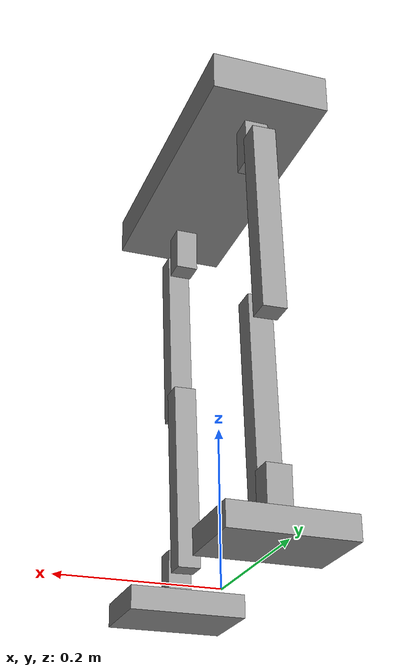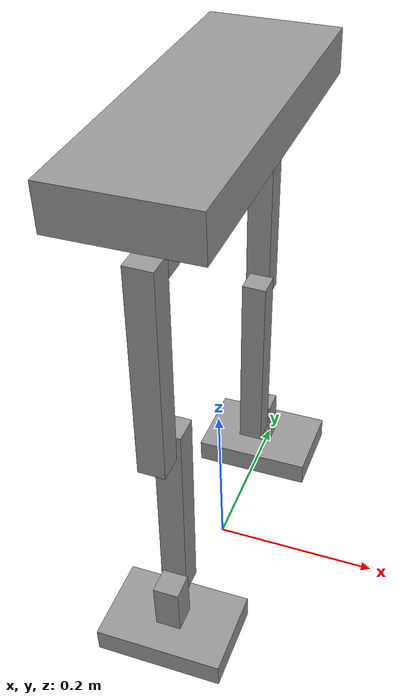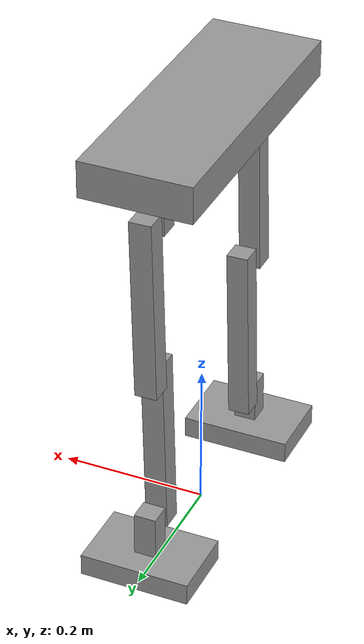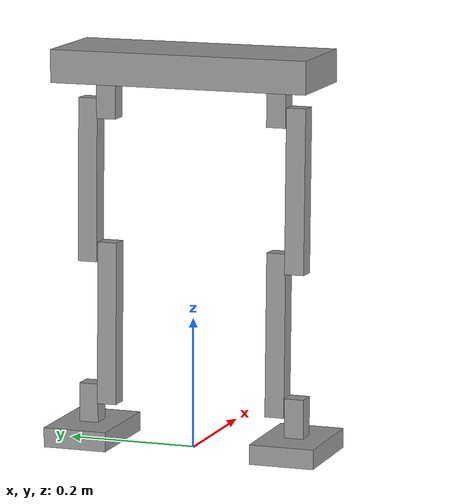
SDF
<?xml version='1.0'?>
<sdf version='1.6'>
  <model name='HumanoidRobot'>
    <link name='link_1'>
      <inertial>
        <mass>1</mass>
        <inertia>
          <ixx>0.166667</ixx>
          <ixy>0</ixy>
          <ixz>0</ixz>
          <iyy>0.166667</iyy>
          <iyz>0</iyz>
          <izz>0.166667</izz>
        </inertia>
        <pose frame=''>0 0 0 0 -0 0</pose>
      </inertial>
      <pose frame=''>0 0 0.585 0 -0 0</pose>
      <gravity>1</gravity>
      <self_collide>1</self_collide>
      <kinematic>0</kinematic>
      <enable_wind>0</enable_wind>
      <visual name='ModelPreview_0::link_1::visual_2'>
        <pose frame=''>0 -0.135 -0.055 0 -0 0</pose>
        <geometry>
          <box>
            <size>0.03 0.03 0.06</size>
          </box>
        </geometry>
        <material>
          <lighting>1</lighting>
          <script>
            <uri>file://media/materials/scripts/gazebo.material</uri>
            <name>Gazebo/Grey</name>
          </script>
          <shader type='vertex'>
            <normal_map>__default__</normal_map>
          </shader>
          <ambient>0.3 0.3 0.3 1</ambient>
          <diffuse>0.7 0.7 0.7 1</diffuse>
          <specular>0.01 0.01 0.01 1</specular>
          <emissive>0 0 0 1</emissive>
        </material>
        <transparency>0</transparency>
        <cast_shadows>1</cast_shadows>
      </visual>
      <visual name='ModelPreview_0::link_1::visual_1'>
        <pose frame=''>0 0.135 -0.055 0 -0 0</pose>
        <geometry>
          <box>
            <size>0.03 0.03 0.06</size>
          </box>
        </geometry>
        <material>
          <lighting>1</lighting>
          <script>
            <uri>file://media/materials/scripts/gazebo.material</uri>
            <name>Gazebo/Grey</name>
          </script>
          <shader type='vertex'>
            <normal_map>__default__</normal_map>
          </shader>
          <ambient>0.3 0.3 0.3 1</ambient>
          <diffuse>0.7 0.7 0.7 1</diffuse>
          <specular>0.01 0.01 0.01 1</specular>
          <emissive>0 0 0 1</emissive>
        </material>
        <transparency>0</transparency>
        <cast_shadows>1</cast_shadows>
      </visual>
      <visual name='visual'>
        <pose frame=''>0 0 0 0 -0 0</pose>
        <geometry>
          <box>
            <size>0.15 0.4 0.05</size>
          </box>
        </geometry>
        <material>
          <lighting>1</lighting>
          <script>
            <uri>file://media/materials/scripts/gazebo.material</uri>
            <name>Gazebo/Grey</name>
          </script>
          <shader type='vertex'>
            <normal_map>__default__</normal_map>
          </shader>
          <ambient>0.3 0.3 0.3 1</ambient>
          <diffuse>0.7 0.7 0.7 1</diffuse>
          <specular>0.01 0.01 0.01 1</specular>
          <emissive>0 0 0 1</emissive>
        </material>
        <transparency>0</transparency>
        <cast_shadows>1</cast_shadows>
      </visual>
      <collision name='collision_2'>
        <laser_retro>0</laser_retro>
        <max_contacts>10</max_contacts>
        <pose frame=''>0 -0.135 -0.055 0 -0 0</pose>
        <geometry>
          <box>
            <size>0.03 0.03 0.06</size>
          </box>
        </geometry>
        <surface>
          <friction>
            <ode>
              <mu>1</mu>
              <mu2>1</mu2>
              <fdir1>0 0 0</fdir1>
              <slip1>0</slip1>
              <slip2>0</slip2>
            </ode>
            <torsional>
              <coefficient>1</coefficient>
              <patch_radius>0</patch_radius>
              <surface_radius>0</surface_radius>
              <use_patch_radius>1</use_patch_radius>
              <ode>
                <slip>0</slip>
              </ode>
            </torsional>
          </friction>
          <bounce>
            <restitution_coefficient>0</restitution_coefficient>
            <threshold>1e+06</threshold>
          </bounce>
          <contact>
            <collide_without_contact>0</collide_without_contact>
            <collide_without_contact_bitmask>1</collide_without_contact_bitmask>
            <collide_bitmask>1</collide_bitmask>
            <ode>
              <soft_cfm>0</soft_cfm>
              <soft_erp>0.2</soft_erp>
              <kp>1e+13</kp>
              <kd>1</kd>
              <max_vel>0.01</max_vel>
              <min_depth>0</min_depth>
            </ode>
            <bullet>
              <split_impulse>1</split_impulse>
              <split_impulse_penetration_threshold>-0.01</split_impulse_penetration_threshold>
              <soft_cfm>0</soft_cfm>
              <soft_erp>0.2</soft_erp>
              <kp>1e+13</kp>
              <kd>1</kd>
            </bullet>
          </contact>
        </surface>
      </collision>
      <collision name='collision_1'>
        <laser_retro>0</laser_retro>
        <max_contacts>10</max_contacts>
        <pose frame=''>0 0.135 -0.055 0 -0 0</pose>
        <geometry>
          <box>
            <size>0.03 0.03 0.06</size>
          </box>
        </geometry>
        <surface>
          <friction>
            <ode>
              <mu>1</mu>
              <mu2>1</mu2>
              <fdir1>0 0 0</fdir1>
              <slip1>0</slip1>
              <slip2>0</slip2>
            </ode>
            <torsional>
              <coefficient>1</coefficient>
              <patch_radius>0</patch_radius>
              <surface_radius>0</surface_radius>
              <use_patch_radius>1</use_patch_radius>
              <ode>
                <slip>0</slip>
              </ode>
            </torsional>
          </friction>
          <bounce>
            <restitution_coefficient>0</restitution_coefficient>
            <threshold>1e+06</threshold>
          </bounce>
          <contact>
            <collide_without_contact>0</collide_without_contact>
            <collide_without_contact_bitmask>1</collide_without_contact_bitmask>
            <collide_bitmask>1</collide_bitmask>
            <ode>
              <soft_cfm>0</soft_cfm>
              <soft_erp>0.2</soft_erp>
              <kp>1e+13</kp>
              <kd>1</kd>
              <max_vel>0.01</max_vel>
              <min_depth>0</min_depth>
            </ode>
            <bullet>
              <split_impulse>1</split_impulse>
              <split_impulse_penetration_threshold>-0.01</split_impulse_penetration_threshold>
              <soft_cfm>0</soft_cfm>
              <soft_erp>0.2</soft_erp>
              <kp>1e+13</kp>
              <kd>1</kd>
            </bullet>
          </contact>
        </surface>
      </collision>
      <collision name='collision'>
        <laser_retro>0</laser_retro>
        <max_contacts>10</max_contacts>
        <pose frame=''>0 0 0 0 -0 0</pose>
        <geometry>
          <box>
            <size>0.15 0.4 0.05</size>
          </box>
        </geometry>
        <surface>
          <friction>
            <ode>
              <mu>1</mu>
              <mu2>1</mu2>
              <fdir1>0 0 0</fdir1>
              <slip1>0</slip1>
              <slip2>0</slip2>
            </ode>
            <torsional>
              <coefficient>1</coefficient>
              <patch_radius>0</patch_radius>
              <surface_radius>0</surface_radius>
              <use_patch_radius>1</use_patch_radius>
              <ode>
                <slip>0</slip>
              </ode>
            </torsional>
          </friction>
          <bounce>
            <restitution_coefficient>0</restitution_coefficient>
            <threshold>1e+06</threshold>
          </bounce>
          <contact>
            <collide_without_contact>0</collide_without_contact>
            <collide_without_contact_bitmask>1</collide_without_contact_bitmask>
            <collide_bitmask>1</collide_bitmask>
            <ode>
              <soft_cfm>0</soft_cfm>
              <soft_erp>0.2</soft_erp>
              <kp>1e+13</kp>
              <kd>1</kd>
              <max_vel>0.01</max_vel>
              <min_depth>0</min_depth>
            </ode>
            <bullet>
              <split_impulse>1</split_impulse>
              <split_impulse_penetration_threshold>-0.01</split_impulse_penetration_threshold>
              <soft_cfm>0</soft_cfm>
              <soft_erp>0.2</soft_erp>
              <kp>1e+13</kp>
              <kd>1</kd>
            </bullet>
          </contact>
        </surface>
      </collision>
    </link>
    <link name='link_0'>
      <inertial>
        <mass>1</mass>
        <inertia>
          <ixx>0.166667</ixx>
          <ixy>0</ixy>
          <ixz>0</ixz>
          <iyy>0.166667</iyy>
          <iyz>0</iyz>
          <izz>0.166667</izz>
        </inertia>
        <pose frame=''>0 0 0 0 -0 0</pose>
      </inertial>
      <pose frame=''>0 -0.165 0.015 0 -0 0</pose>
      <gravity>1</gravity>
      <self_collide>1</self_collide>
      <kinematic>0</kinematic>
      <enable_wind>0</enable_wind>
      <visual name='ModelPreview_1::link_0::visual_1'>
        <pose frame=''>0 0 0.045 0 -0 0</pose>
        <geometry>
          <box>
            <size>0.03 0.03 0.06</size>
          </box>
        </geometry>
        <material>
          <lighting>1</lighting>
          <script>
            <uri>file://media/materials/scripts/gazebo.material</uri>
            <name>Gazebo/Grey</name>
          </script>
          <shader type='vertex'>
            <normal_map>__default__</normal_map>
          </shader>
          <ambient>0.3 0.3 0.3 1</ambient>
          <diffuse>0.7 0.7 0.7 1</diffuse>
          <specular>0.01 0.01 0.01 1</specular>
          <emissive>0 0 0 1</emissive>
        </material>
        <transparency>0</transparency>
        <cast_shadows>1</cast_shadows>
      </visual>
      <visual name='visual'>
        <pose frame=''>0 0 0 0 -0 0</pose>
        <geometry>
          <box>
            <size>0.15 0.1 0.03</size>
          </box>
        </geometry>
        <material>
          <lighting>1</lighting>
          <script>
            <uri>file://media/materials/scripts/gazebo.material</uri>
            <name>Gazebo/Grey</name>
          </script>
          <shader type='vertex'>
            <normal_map>__default__</normal_map>
          </shader>
          <ambient>0.3 0.3 0.3 1</ambient>
          <diffuse>0.7 0.7 0.7 1</diffuse>
          <specular>0.01 0.01 0.01 1</specular>
          <emissive>0 0 0 1</emissive>
        </material>
        <transparency>0</transparency>
        <cast_shadows>1</cast_shadows>
      </visual>
      <collision name='collision_1'>
        <laser_retro>0</laser_retro>
        <max_contacts>10</max_contacts>
        <pose frame=''>0 0 0.045 0 -0 0</pose>
        <geometry>
          <box>
            <size>0.03 0.03 0.06</size>
          </box>
        </geometry>
        <surface>
          <friction>
            <ode>
              <mu>1</mu>
              <mu2>1</mu2>
              <fdir1>0 0 0</fdir1>
              <slip1>0</slip1>
              <slip2>0</slip2>
            </ode>
            <torsional>
              <coefficient>1</coefficient>
              <patch_radius>0</patch_radius>
              <surface_radius>0</surface_radius>
              <use_patch_radius>1</use_patch_radius>
              <ode>
                <slip>0</slip>
              </ode>
            </torsional>
          </friction>
          <bounce>
            <restitution_coefficient>0</restitution_coefficient>
            <threshold>1e+06</threshold>
          </bounce>
          <contact>
            <collide_without_contact>0</collide_without_contact>
            <collide_without_contact_bitmask>1</collide_without_contact_bitmask>
            <collide_bitmask>1</collide_bitmask>
            <ode>
              <soft_cfm>0</soft_cfm>
              <soft_erp>0.2</soft_erp>
              <kp>1e+13</kp>
              <kd>1</kd>
              <max_vel>0.01</max_vel>
              <min_depth>0</min_depth>
            </ode>
            <bullet>
              <split_impulse>1</split_impulse>
              <split_impulse_penetration_threshold>-0.01</split_impulse_penetration_threshold>
              <soft_cfm>0</soft_cfm>
              <soft_erp>0.2</soft_erp>
              <kp>1e+13</kp>
              <kd>1</kd>
            </bullet>
          </contact>
        </surface>
      </collision>
      <collision name='collision'>
        <laser_retro>0</laser_retro>
        <max_contacts>10</max_contacts>
        <pose frame=''>0 0 0 0 -0 0</pose>
        <geometry>
          <box>
            <size>0.15 0.1 0.03</size>
          </box>
        </geometry>
        <surface>
          <friction>
            <ode>
              <mu>1</mu>
              <mu2>1</mu2>
              <fdir1>0 0 0</fdir1>
              <slip1>0</slip1>
              <slip2>0</slip2>
            </ode>
            <torsional>
              <coefficient>1</coefficient>
              <patch_radius>0</patch_radius>
              <surface_radius>0</surface_radius>
              <use_patch_radius>1</use_patch_radius>
              <ode>
                <slip>0</slip>
              </ode>
            </torsional>
          </friction>
          <bounce>
            <restitution_coefficient>0</restitution_coefficient>
            <threshold>1e+06</threshold>
          </bounce>
          <contact>
            <collide_without_contact>0</collide_without_contact>
            <collide_without_contact_bitmask>1</collide_without_contact_bitmask>
            <collide_bitmask>1</collide_bitmask>
            <ode>
              <soft_cfm>0</soft_cfm>
              <soft_erp>0.2</soft_erp>
              <kp>1e+13</kp>
              <kd>1</kd>
              <max_vel>0.01</max_vel>
              <min_depth>0</min_depth>
            </ode>
            <bullet>
              <split_impulse>1</split_impulse>
              <split_impulse_penetration_threshold>-0.01</split_impulse_penetration_threshold>
              <soft_cfm>0</soft_cfm>
              <soft_erp>0.2</soft_erp>
              <kp>1e+13</kp>
              <kd>1</kd>
            </bullet>
          </contact>
        </surface>
      </collision>
    </link>
    <link name='link_0_clone'>
      <inertial>
        <mass>1</mass>
        <inertia>
          <ixx>0.166667</ixx>
          <ixy>0</ixy>
          <ixz>0</ixz>
          <iyy>0.166667</iyy>
          <iyz>0</iyz>
          <izz>0.166667</izz>
        </inertia>
        <pose frame=''>0 0 0 0 -0 0</pose>
      </inertial>
      <pose frame=''>0 0.165 0.015 0 -0 0</pose>
      <gravity>1</gravity>
      <self_collide>1</self_collide>
      <kinematic>0</kinematic>
      <enable_wind>0</enable_wind>
      <visual name='visual'>
        <pose frame=''>0 0 0 0 -0 0</pose>
        <geometry>
          <box>
            <size>0.15 0.1 0.03</size>
          </box>
        </geometry>
        <material>
          <lighting>1</lighting>
          <script>
            <uri>file://media/materials/scripts/gazebo.material</uri>
            <name>Gazebo/Grey</name>
          </script>
          <shader type='vertex'>
            <normal_map>__default__</normal_map>
          </shader>
          <ambient>0.3 0.3 0.3 1</ambient>
          <diffuse>0.7 0.7 0.7 1</diffuse>
          <specular>0.01 0.01 0.01 1</specular>
          <emissive>0 0 0 1</emissive>
        </material>
        <transparency>0</transparency>
        <cast_shadows>1</cast_shadows>
      </visual>
      <visual name='visual_1'>
        <pose frame=''>0 0 0.045 0 -0 0</pose>
        <geometry>
          <box>
            <size>0.03 0.03 0.06</size>
          </box>
        </geometry>
        <material>
          <lighting>1</lighting>
          <script>
            <uri>file://media/materials/scripts/gazebo.material</uri>
            <name>Gazebo/Grey</name>
          </script>
          <shader type='vertex'>
            <normal_map>__default__</normal_map>
          </shader>
          <ambient>0.3 0.3 0.3 1</ambient>
          <diffuse>0.7 0.7 0.7 1</diffuse>
          <specular>0.01 0.01 0.01 1</specular>
          <emissive>0 0 0 1</emissive>
        </material>
        <transparency>0</transparency>
        <cast_shadows>1</cast_shadows>
      </visual>
      <collision name='collision_1'>
        <laser_retro>0</laser_retro>
        <max_contacts>10</max_contacts>
        <pose frame=''>0 0 0.045 0 -0 0</pose>
        <geometry>
          <box>
            <size>0.03 0.03 0.06</size>
          </box>
        </geometry>
        <surface>
          <friction>
            <ode>
              <mu>1</mu>
              <mu2>1</mu2>
              <fdir1>0 0 0</fdir1>
              <slip1>0</slip1>
              <slip2>0</slip2>
            </ode>
            <torsional>
              <coefficient>1</coefficient>
              <patch_radius>0</patch_radius>
              <surface_radius>0</surface_radius>
              <use_patch_radius>1</use_patch_radius>
              <ode>
                <slip>0</slip>
              </ode>
            </torsional>
          </friction>
          <bounce>
            <restitution_coefficient>0</restitution_coefficient>
            <threshold>1e+06</threshold>
          </bounce>
          <contact>
            <collide_without_contact>0</collide_without_contact>
            <collide_without_contact_bitmask>1</collide_without_contact_bitmask>
            <collide_bitmask>1</collide_bitmask>
            <ode>
              <soft_cfm>0</soft_cfm>
              <soft_erp>0.2</soft_erp>
              <kp>1e+13</kp>
              <kd>1</kd>
              <max_vel>0.01</max_vel>
              <min_depth>0</min_depth>
            </ode>
            <bullet>
              <split_impulse>1</split_impulse>
              <split_impulse_penetration_threshold>-0.01</split_impulse_penetration_threshold>
              <soft_cfm>0</soft_cfm>
              <soft_erp>0.2</soft_erp>
              <kp>1e+13</kp>
              <kd>1</kd>
            </bullet>
          </contact>
        </surface>
      </collision>
      <collision name='collision'>
        <laser_retro>0</laser_retro>
        <max_contacts>10</max_contacts>
        <pose frame=''>0 0 0 0 -0 0</pose>
        <geometry>
          <box>
            <size>0.15 0.1 0.03</size>
          </box>
        </geometry>
        <surface>
          <friction>
            <ode>
              <mu>1</mu>
              <mu2>1</mu2>
              <fdir1>0 0 0</fdir1>
              <slip1>0</slip1>
              <slip2>0</slip2>
            </ode>
            <torsional>
              <coefficient>1</coefficient>
              <patch_radius>0</patch_radius>
              <surface_radius>0</surface_radius>
              <use_patch_radius>1</use_patch_radius>
              <ode>
                <slip>0</slip>
              </ode>
            </torsional>
          </friction>
          <bounce>
            <restitution_coefficient>0</restitution_coefficient>
            <threshold>1e+06</threshold>
          </bounce>
          <contact>
            <collide_without_contact>0</collide_without_contact>
            <collide_without_contact_bitmask>1</collide_without_contact_bitmask>
            <collide_bitmask>1</collide_bitmask>
            <ode>
              <soft_cfm>0</soft_cfm>
              <soft_erp>0.2</soft_erp>
              <kp>1e+13</kp>
              <kd>1</kd>
              <max_vel>0.01</max_vel>
              <min_depth>0</min_depth>
            </ode>
            <bullet>
              <split_impulse>1</split_impulse>
              <split_impulse_penetration_threshold>-0.01</split_impulse_penetration_threshold>
              <soft_cfm>0</soft_cfm>
              <soft_erp>0.2</soft_erp>
              <kp>1e+13</kp>
              <kd>1</kd>
            </bullet>
          </contact>
        </surface>
      </collision>
    </link>
    <link name='link_2'>
      <inertial>
        <mass>1</mass>
        <inertia>
          <ixx>0.166667</ixx>
          <ixy>0</ixy>
          <ixz>0</ixz>
          <iyy>0.166667</iyy>
          <iyz>0</iyz>
          <izz>0.166667</izz>
        </inertia>
        <pose frame=''>0 0 0 0 -0 0</pose>
      </inertial>
      <pose frame=''>0 -0.165 0.405 0 0.023326 0</pose>
      <gravity>1</gravity>
      <self_collide>1</self_collide>
      <kinematic>0</kinematic>
      <enable_wind>0</enable_wind>
      <visual name='visual'>
        <pose frame=''>0 0 0 0 -0 0</pose>
        <geometry>
          <box>
            <size>0.03 0.03 0.25</size>
          </box>
        </geometry>
        <material>
          <lighting>1</lighting>
          <script>
            <uri>file://media/materials/scripts/gazebo.material</uri>
            <name>Gazebo/Grey</name>
          </script>
          <shader type='vertex'>
            <normal_map>__default__</normal_map>
          </shader>
          <ambient>0.3 0.3 0.3 1</ambient>
          <diffuse>0.7 0.7 0.7 1</diffuse>
          <specular>0.01 0.01 0.01 1</specular>
          <emissive>0 0 0 1</emissive>
        </material>
        <transparency>0</transparency>
        <cast_shadows>1</cast_shadows>
      </visual>
      <collision name='collision'>
        <laser_retro>0</laser_retro>
        <max_contacts>10</max_contacts>
        <pose frame=''>0 0 0 0 -0 0</pose>
        <geometry>
          <box>
            <size>0.03 0.03 0.25</size>
          </box>
        </geometry>
        <surface>
          <friction>
            <ode>
              <mu>1</mu>
              <mu2>1</mu2>
              <fdir1>0 0 0</fdir1>
              <slip1>0</slip1>
              <slip2>0</slip2>
            </ode>
            <torsional>
              <coefficient>1</coefficient>
              <patch_radius>0</patch_radius>
              <surface_radius>0</surface_radius>
              <use_patch_radius>1</use_patch_radius>
              <ode>
                <slip>0</slip>
              </ode>
            </torsional>
          </friction>
          <bounce>
            <restitution_coefficient>0</restitution_coefficient>
            <threshold>1e+06</threshold>
          </bounce>
          <contact>
            <collide_without_contact>0</collide_without_contact>
            <collide_without_contact_bitmask>1</collide_without_contact_bitmask>
            <collide_bitmask>1</collide_bitmask>
            <ode>
              <soft_cfm>0</soft_cfm>
              <soft_erp>0.2</soft_erp>
              <kp>1e+13</kp>
              <kd>1</kd>
              <max_vel>0.01</max_vel>
              <min_depth>0</min_depth>
            </ode>
            <bullet>
              <split_impulse>1</split_impulse>
              <split_impulse_penetration_threshold>-0.01</split_impulse_penetration_threshold>
              <soft_cfm>0</soft_cfm>
              <soft_erp>0.2</soft_erp>
              <kp>1e+13</kp>
              <kd>1</kd>
            </bullet>
          </contact>
        </surface>
      </collision>
    </link>
    <link name='link_2_clone'>
      <inertial>
        <mass>1</mass>
        <inertia>
          <ixx>0.166667</ixx>
          <ixy>0</ixy>
          <ixz>0</ixz>
          <iyy>0.166667</iyy>
          <iyz>0</iyz>
          <izz>0.166667</izz>
        </inertia>
        <pose frame=''>0 0 0 0 -0 0</pose>
      </inertial>
      <pose frame=''>0 -0.135 0.185 0 0.023326 0</pose>
      <gravity>1</gravity>
      <self_collide>1</self_collide>
      <kinematic>0</kinematic>
      <enable_wind>0</enable_wind>
      <visual name='visual'>
        <pose frame=''>0 0 0 0 -0 0</pose>
        <geometry>
          <box>
            <size>0.03 0.03 0.25</size>
          </box>
        </geometry>
        <material>
          <lighting>1</lighting>
          <script>
            <uri>file://media/materials/scripts/gazebo.material</uri>
            <name>Gazebo/Grey</name>
          </script>
          <shader type='vertex'>
            <normal_map>__default__</normal_map>
          </shader>
          <ambient>0.3 0.3 0.3 1</ambient>
          <diffuse>0.7 0.7 0.7 1</diffuse>
          <specular>0.01 0.01 0.01 1</specular>
          <emissive>0 0 0 1</emissive>
        </material>
        <transparency>0</transparency>
        <cast_shadows>1</cast_shadows>
      </visual>
      <collision name='collision'>
        <laser_retro>0</laser_retro>
        <max_contacts>10</max_contacts>
        <pose frame=''>0 0 0 0 -0 0</pose>
        <geometry>
          <box>
            <size>0.03 0.03 0.25</size>
          </box>
        </geometry>
        <surface>
          <friction>
            <ode>
              <mu>1</mu>
              <mu2>1</mu2>
              <fdir1>0 0 0</fdir1>
              <slip1>0</slip1>
              <slip2>0</slip2>
            </ode>
            <torsional>
              <coefficient>1</coefficient>
              <patch_radius>0</patch_radius>
              <surface_radius>0</surface_radius>
              <use_patch_radius>1</use_patch_radius>
              <ode>
                <slip>0</slip>
              </ode>
            </torsional>
          </friction>
          <bounce>
            <restitution_coefficient>0</restitution_coefficient>
            <threshold>1e+06</threshold>
          </bounce>
          <contact>
            <collide_without_contact>0</collide_without_contact>
            <collide_without_contact_bitmask>1</collide_without_contact_bitmask>
            <collide_bitmask>1</collide_bitmask>
            <ode>
              <soft_cfm>0</soft_cfm>
              <soft_erp>0.2</soft_erp>
              <kp>1e+13</kp>
              <kd>1</kd>
              <max_vel>0.01</max_vel>
              <min_depth>0</min_depth>
            </ode>
            <bullet>
              <split_impulse>1</split_impulse>
              <split_impulse_penetration_threshold>-0.01</split_impulse_penetration_threshold>
              <soft_cfm>0</soft_cfm>
              <soft_erp>0.2</soft_erp>
              <kp>1e+13</kp>
              <kd>1</kd>
            </bullet>
          </contact>
        </surface>
      </collision>
    </link>
    <link name='link_2_clone_0'>
      <inertial>
        <mass>1</mass>
        <inertia>
          <ixx>0.166667</ixx>
          <ixy>0</ixy>
          <ixz>0</ixz>
          <iyy>0.166667</iyy>
          <iyz>0</iyz>
          <izz>0.166667</izz>
        </inertia>
        <pose frame=''>0 0 0 0 -0 0</pose>
      </inertial>
      <pose frame=''>0 0.165 0.405 0 0.023326 0</pose>
      <gravity>1</gravity>
      <self_collide>1</self_collide>
      <kinematic>0</kinematic>
      <enable_wind>0</enable_wind>
      <visual name='visual'>
        <pose frame=''>0 0 0 0 -0 0</pose>
        <geometry>
          <box>
            <size>0.03 0.03 0.25</size>
          </box>
        </geometry>
        <material>
          <lighting>1</lighting>
          <script>
            <uri>file://media/materials/scripts/gazebo.material</uri>
            <name>Gazebo/Grey</name>
          </script>
          <shader type='vertex'>
            <normal_map>__default__</normal_map>
          </shader>
          <ambient>0.3 0.3 0.3 1</ambient>
          <diffuse>0.7 0.7 0.7 1</diffuse>
          <specular>0.01 0.01 0.01 1</specular>
          <emissive>0 0 0 1</emissive>
        </material>
        <transparency>0</transparency>
        <cast_shadows>1</cast_shadows>
      </visual>
      <collision name='collision'>
        <laser_retro>0</laser_retro>
        <max_contacts>10</max_contacts>
        <pose frame=''>0 0 0 0 -0 0</pose>
        <geometry>
          <box>
            <size>0.03 0.03 0.25</size>
          </box>
        </geometry>
        <surface>
          <friction>
            <ode>
              <mu>1</mu>
              <mu2>1</mu2>
              <fdir1>0 0 0</fdir1>
              <slip1>0</slip1>
              <slip2>0</slip2>
            </ode>
            <torsional>
              <coefficient>1</coefficient>
              <patch_radius>0</patch_radius>
              <surface_radius>0</surface_radius>
              <use_patch_radius>1</use_patch_radius>
              <ode>
                <slip>0</slip>
              </ode>
            </torsional>
          </friction>
          <bounce>
            <restitution_coefficient>0</restitution_coefficient>
            <threshold>1e+06</threshold>
          </bounce>
          <contact>
            <collide_without_contact>0</collide_without_contact>
            <collide_without_contact_bitmask>1</collide_without_contact_bitmask>
            <collide_bitmask>1</collide_bitmask>
            <ode>
              <soft_cfm>0</soft_cfm>
              <soft_erp>0.2</soft_erp>
              <kp>1e+13</kp>
              <kd>1</kd>
              <max_vel>0.01</max_vel>
              <min_depth>0</min_depth>
            </ode>
            <bullet>
              <split_impulse>1</split_impulse>
              <split_impulse_penetration_threshold>-0.01</split_impulse_penetration_threshold>
              <soft_cfm>0</soft_cfm>
              <soft_erp>0.2</soft_erp>
              <kp>1e+13</kp>
              <kd>1</kd>
            </bullet>
          </contact>
        </surface>
      </collision>
    </link>
    <link name='link_2_clone_1'>
      <inertial>
        <mass>1</mass>
        <inertia>
          <ixx>0.166667</ixx>
          <ixy>0</ixy>
          <ixz>0</ixz>
          <iyy>0.166667</iyy>
          <iyz>0</iyz>
          <izz>0.166667</izz>
        </inertia>
        <pose frame=''>0 0 0 0 -0 0</pose>
      </inertial>
      <pose frame=''>0 0.135 0.185 0 0.023326 0</pose>
      <gravity>1</gravity>
      <self_collide>1</self_collide>
      <kinematic>0</kinematic>
      <enable_wind>0</enable_wind>
      <visual name='visual'>
        <pose frame=''>0 0 0 0 -0 0</pose>
        <geometry>
          <box>
            <size>0.03 0.03 0.25</size>
          </box>
        </geometry>
        <material>
          <lighting>1</lighting>
          <script>
            <uri>file://media/materials/scripts/gazebo.material</uri>
            <name>Gazebo/Grey</name>
          </script>
          <shader type='vertex'>
            <normal_map>__default__</normal_map>
          </shader>
          <ambient>0.3 0.3 0.3 1</ambient>
          <diffuse>0.7 0.7 0.7 1</diffuse>
          <specular>0.01 0.01 0.01 1</specular>
          <emissive>0 0 0 1</emissive>
        </material>
        <transparency>0</transparency>
        <cast_shadows>1</cast_shadows>
      </visual>
      <collision name='collision'>
        <laser_retro>0</laser_retro>
        <max_contacts>10</max_contacts>
        <pose frame=''>0 0 0 0 -0 0</pose>
        <geometry>
          <box>
            <size>0.03 0.03 0.25</size>
          </box>
        </geometry>
        <surface>
          <friction>
            <ode>
              <mu>1</mu>
              <mu2>1</mu2>
              <fdir1>0 0 0</fdir1>
              <slip1>0</slip1>
              <slip2>0</slip2>
            </ode>
            <torsional>
              <coefficient>1</coefficient>
              <patch_radius>0</patch_radius>
              <surface_radius>0</surface_radius>
              <use_patch_radius>1</use_patch_radius>
              <ode>
                <slip>0</slip>
              </ode>
            </torsional>
          </friction>
          <bounce>
            <restitution_coefficient>0</restitution_coefficient>
            <threshold>1e+06</threshold>
          </bounce>
          <contact>
            <collide_without_contact>0</collide_without_contact>
            <collide_without_contact_bitmask>1</collide_without_contact_bitmask>
            <collide_bitmask>1</collide_bitmask>
            <ode>
              <soft_cfm>0</soft_cfm>
              <soft_erp>0.2</soft_erp>
              <kp>1e+13</kp>
              <kd>1</kd>
              <max_vel>0.01</max_vel>
              <min_depth>0</min_depth>
            </ode>
            <bullet>
              <split_impulse>1</split_impulse>
              <split_impulse_penetration_threshold>-0.01</split_impulse_penetration_threshold>
              <soft_cfm>0</soft_cfm>
              <soft_erp>0.2</soft_erp>
              <kp>1e+13</kp>
              <kd>1</kd>
            </bullet>
          </contact>
        </surface>
      </collision>
    </link>
    <joint name='link_1_JOINT_1' type='revolute'>
      <parent>link_1</parent>
      <child>link_2</child>
      <pose frame=''>0 0 0.11 0 -0 0</pose>
      <axis>
        <xyz>0 1 0</xyz>
        <use_parent_model_frame>0</use_parent_model_frame>
        <limit>
          <lower>-1.79769e+308</lower>
          <upper>1.79769e+308</upper>
          <effort>-1</effort>
          <velocity>-1</velocity>
        </limit>
        <dynamics>
          <spring_reference>0</spring_reference>
          <spring_stiffness>0</spring_stiffness>
          <damping>0</damping>
          <friction>0</friction>
        </dynamics>
      </axis>
      <physics>
        <ode>
          <limit>
            <cfm>0</cfm>
            <erp>0.2</erp>
          </limit>
          <suspension>
            <cfm>0</cfm>
            <erp>0.2</erp>
          </suspension>
        </ode>
      </physics>
    </joint>
    <joint name='link_1_JOINT_2' type='revolute'>
      <parent>link_1</parent>
      <child>link_2_clone_0</child>
      <pose frame=''>0 0 0.11 0 -0 0</pose>
      <axis>
        <xyz>0 1 0</xyz>
        <use_parent_model_frame>0</use_parent_model_frame>
        <limit>
          <lower>-1.79769e+308</lower>
          <upper>1.79769e+308</upper>
          <effort>-1</effort>
          <velocity>-1</velocity>
        </limit>
        <dynamics>
          <spring_reference>0</spring_reference>
          <spring_stiffness>0</spring_stiffness>
          <damping>0</damping>
          <friction>0</friction>
        </dynamics>
      </axis>
      <physics>
        <ode>
          <limit>
            <cfm>0</cfm>
            <erp>0.2</erp>
          </limit>
          <suspension>
            <cfm>0</cfm>
            <erp>0.2</erp>
          </suspension>
        </ode>
      </physics>
    </joint>
    <joint name='link_2_JOINT_0' type='revolute'>
      <parent>link_2</parent>
      <child>link_2_clone</child>
      <pose frame=''>0 0 0.11 0 -0 0</pose>
      <axis>
        <xyz>0 1 0</xyz>
        <use_parent_model_frame>0</use_parent_model_frame>
        <limit>
          <lower>-1.79769e+308</lower>
          <upper>1.79769e+308</upper>
          <effort>-1</effort>
          <velocity>-1</velocity>
        </limit>
        <dynamics>
          <spring_reference>0</spring_reference>
          <spring_stiffness>0</spring_stiffness>
          <damping>0</damping>
          <friction>0</friction>
        </dynamics>
      </axis>
      <physics>
        <ode>
          <limit>
            <cfm>0</cfm>
            <erp>0.2</erp>
          </limit>
          <suspension>
            <cfm>0</cfm>
            <erp>0.2</erp>
          </suspension>
        </ode>
      </physics>
    </joint>
    <joint name='link_2_clone_0_JOINT_3' type='revolute'>
      <parent>link_2_clone_0</parent>
      <child>link_2_clone_1</child>
      <pose frame=''>0 0 0.11 0 -0 0</pose>
      <axis>
        <xyz>0 1 0</xyz>
        <use_parent_model_frame>0</use_parent_model_frame>
        <limit>
          <lower>-1.79769e+308</lower>
          <upper>1.79769e+308</upper>
          <effort>-1</effort>
          <velocity>-1</velocity>
        </limit>
        <dynamics>
          <spring_reference>0</spring_reference>
          <spring_stiffness>0</spring_stiffness>
          <damping>0</damping>
          <friction>0</friction>
        </dynamics>
      </axis>
      <physics>
        <ode>
          <limit>
            <cfm>0</cfm>
            <erp>0.2</erp>
          </limit>
          <suspension>
            <cfm>0</cfm>
            <erp>0.2</erp>
          </suspension>
        </ode>
      </physics>
    </joint>
    <joint name='link_2_clone_1_JOINT_4' type='revolute'>
      <parent>link_2_clone_1</parent>
      <child>link_0_clone</child>
      <pose frame=''>0 0 0.06 0 -0 0</pose>
      <axis>
        <xyz>0 1 0</xyz>
        <use_parent_model_frame>0</use_parent_model_frame>
        <limit>
          <lower>-1.79769e+308</lower>
          <upper>1.79769e+308</upper>
          <effort>-1</effort>
          <velocity>-1</velocity>
        </limit>
        <dynamics>
          <spring_reference>0</spring_reference>
          <spring_stiffness>0</spring_stiffness>
          <damping>0</damping>
          <friction>0</friction>
        </dynamics>
      </axis>
      <physics>
        <ode>
          <limit>
            <cfm>0</cfm>
            <erp>0.2</erp>
          </limit>
          <suspension>
            <cfm>0</cfm>
            <erp>0.2</erp>
          </suspension>
        </ode>
      </physics>
    </joint>
    <joint name='link_2_clone_JOINT_1' type='revolute'>
      <parent>link_2_clone</parent>
      <child>link_0</child>
      <pose frame=''>0 0 0.06 0 -0 0</pose>
      <axis>
        <xyz>0 1 0</xyz>
        <use_parent_model_frame>0</use_parent_model_frame>
        <limit>
          <lower>-1.79769e+308</lower>
          <upper>1.79769e+308</upper>
          <effort>-1</effort>
          <velocity>-1</velocity>
        </limit>
        <dynamics>
          <spring_reference>0</spring_reference>
          <spring_stiffness>0</spring_stiffness>
          <damping>0</damping>
          <friction>0</friction>
        </dynamics>
      </axis>
      <physics>
        <ode>
          <limit>
            <cfm>0</cfm>
            <erp>0.2</erp>
          </limit>
          <suspension>
            <cfm>0</cfm>
            <erp>0.2</erp>
          </suspension>
        </ode>
      </physics>
    </joint>
    <static>0</static>
    <allow_auto_disable>1</allow_auto_disable>
  </model>
</sdf>
